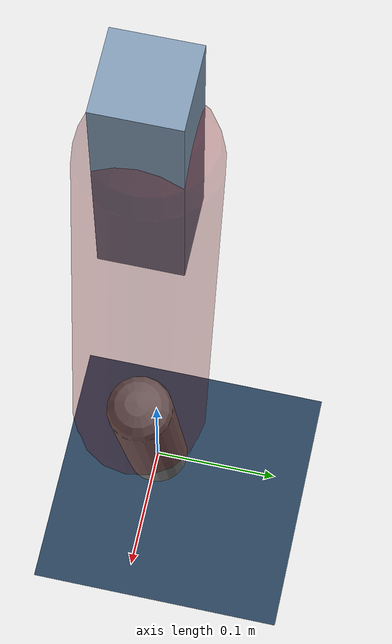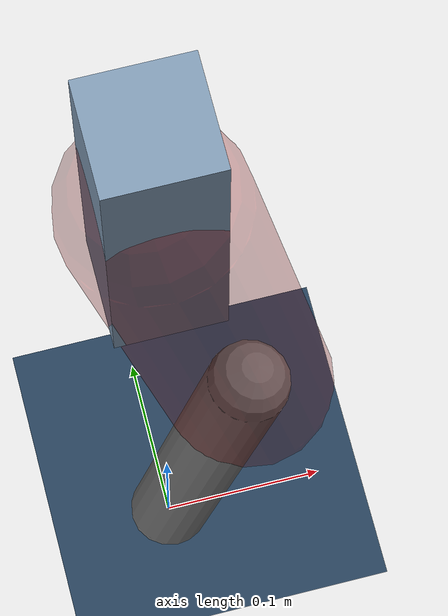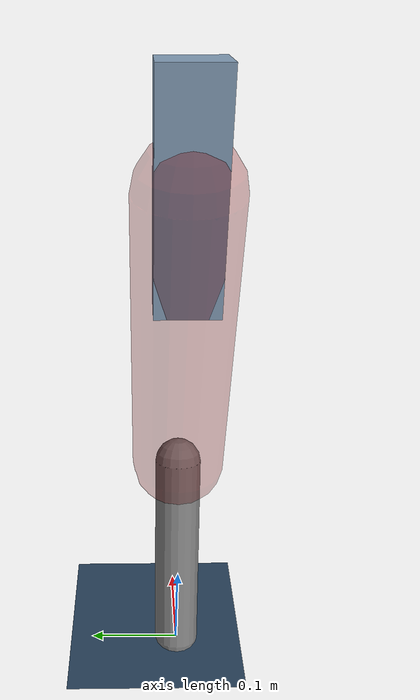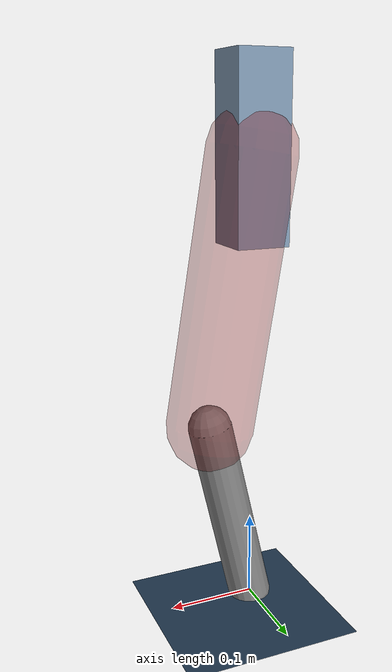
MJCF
<mujoco model="Hopper2D">
	<compiler inertiafromgeom="true" angle="radian" />
	<option timestep="0.001" integrator="implicit" cone="elliptic" solver="Newton" tolerance="1e-10" />

	<default>
		<geom contype="1" conaffinity="1" condim="3" friction="2 0.005 0.0001" solref="0.005 1" />
		<joint limited="true" damping="0.1" />
	</default>

	<asset>
		<texture name="skybox" type="skybox" builtin="gradient" rgb1=".4 .6 .8" rgb2="0 0 0" width="800" height="800" />
		<texture name="grid" type="2d" builtin="checker" rgb1=".1 .2 .3" rgb2=".2 .3 .4" width="300" height="300" mark="edge" markrgb=".2 .3 .4" />
		<material name="ground" texture="grid" texrepeat="1 1" texuniform="true" reflectance="0.1" />
		<material name="leg" rgba="0.5 0.6 0.7 1" />
	</asset>

	<worldbody>

		<geom name="floor" type="plane" size="5 5 0.25" material="ground" />

		<light directional="false" diffuse="0.8 0.8 0.8" specular="0.3 0.3 0.3" pos="0 0 2" dir="0 0 -1" />
		<light mode="targetbodycom" target="base" directional="false" diffuse="0.8 0.8 0.8" specular="0.3 0.3 0.3" pos="0 0 2" dir="0 0 -1" />

		<camera name="fixed" pos="0 -2 1" xyaxes="1 0 0 0 0 1" />
		<camera name="tracking" mode="trackcom" pos="0 -3 1" />

		<body name="root" pos="0 0 0.5268257859429282">
			<joint name="slide_x" type="slide" axis="1 0 0" range="-100 100" />
			<joint name="slide_z" type="slide" axis="0 0 1" range="0 10" />

			<body name="base" pos="0 0 0">
				<geom name="torso" type="box" size="0.03 0.03 0.1" mass="1.712" material="leg" />

				<body name="link1" pos="0 0 0" euler="0 1.4045798707806532 0">
					<joint type="hinge" axis="0 -1 0" pos="0 0 0" name="hinge1" limited="true" range="-3.14 3.14" stiffness="0" damping="0.1" />
					<geom name="thigh" type="capsule" fromto="0 0 0 0.3081117575478461 0 0" size="0.05" rgba="0.5 0 0 0.3" mass="1.010712921133969" />

					<body name="link2" pos="0.3081117575478461 0 0" euler="0 0.39099307414834833 0">
						<joint type="hinge" axis="0 -1 0" pos="0 0 0" name="hinge2" limited="true" range="-3.14 3.14" stiffness="0" damping="0.1" />
						<geom name="shank" type="capsule" fromto="0 0 0 0.22871402839508204 0 0" size="0.025" mass="0.4249426255555738" />

					</body>
				</body>
			</body>
		</body>
	</worldbody>

	<actuator>
		<motor name="torque1" joint="hinge1" ctrlrange="-49.982283853011886 49.982283853011886" ctrllimited="true" gear="1" />
		<motor name="torque2" joint="hinge2" ctrlrange="-49.42553387557167 49.42553387557167" ctrllimited="true" gear="1" />
	</actuator>
</mujoco>
